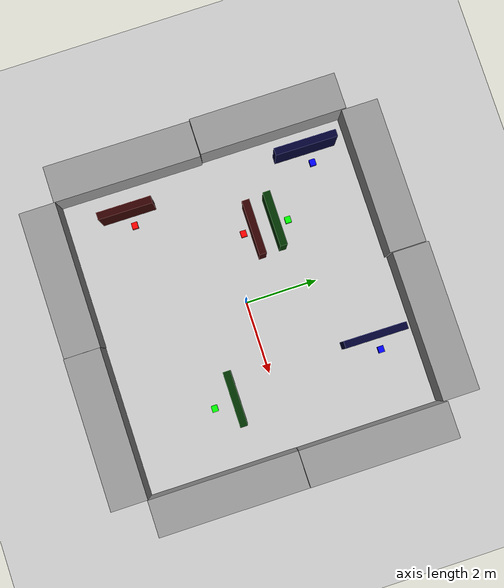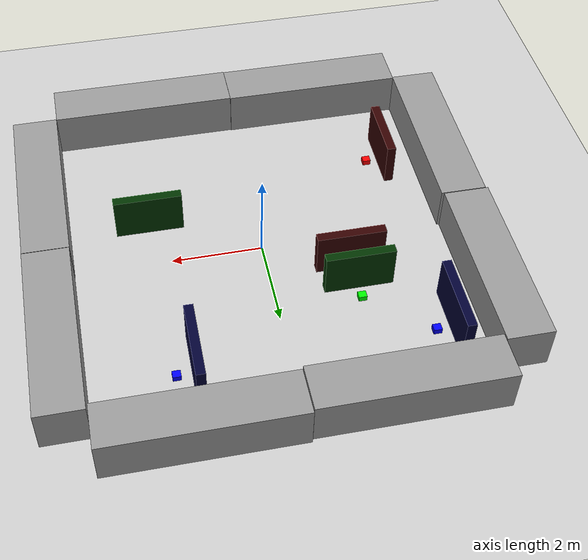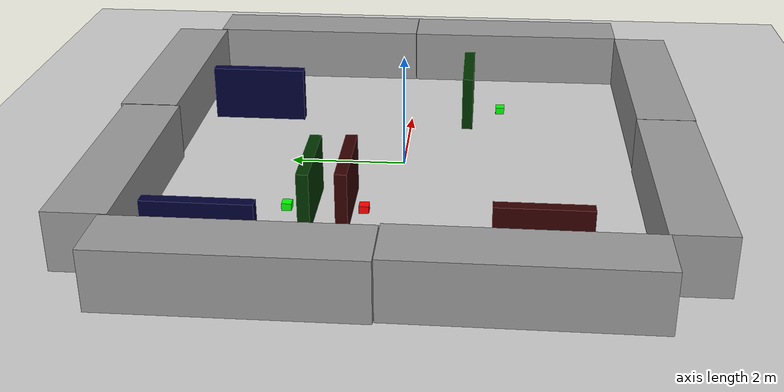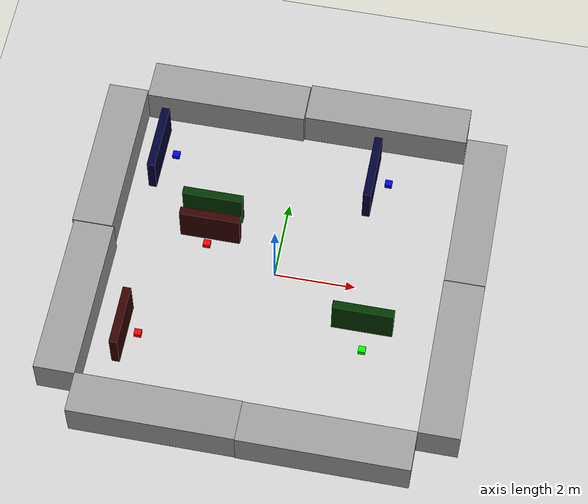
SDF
<sdf version="1.7">
 <world name="default">
  <light name="sun" type="directional">
   <cast_shadows>0</cast_shadows>
   <pose>0 0 10 0 -0 0</pose>
   <diffuse>0.8 0.8 0.8 1</diffuse>
   <specular>0.2 0.2 0.2 1</specular>
   <attenuation>
    <range>1000</range>
    <constant>0.9</constant>
    <linear>0.01</linear>
    <quadratic>0.001</quadratic>
   </attenuation>
   <direction>-0.5 0.1 -0.9</direction>
   <spot><inner_angle>0</inner_angle><outer_angle>0</outer_angle><falloff>0</falloff></spot>
  </light>
  <model name="ground_plane">
   <static>1</static>
   <link name="link">
    <collision name="collision">
     <geometry><plane><normal>0 0 1</normal><size>100 100</size></plane></geometry>
     <surface><friction><ode><mu>100</mu><mu2>50</mu2></ode></friction></surface>
    </collision>
    <visual name="visual">
     <cast_shadows>0</cast_shadows>
     <geometry><plane><normal>0 0 1</normal><size>100 100</size></plane></geometry>
     <material>
      <script><uri>file://media/materials/scripts/gazebo.material</uri><name>Gazebo/Grey</name></script>
     </material>
    </visual>
   </link>
  </model>
  <gravity>0 0 -9.8</gravity>
  <scene><ambient>0.4 0.4 0.4 1</ambient><background>0.7 0.7 0.7 1</background><shadows>1</shadows></scene>
  <magnetic_field>6e-06 2.3e-05 -4.2e-05</magnetic_field>
  <atmosphere type="adiabatic"/>
  <physics type="ode">
   <max_step_size>0.001</max_step_size>
   <real_time_factor>1</real_time_factor>
   <real_time_update_rate>1000</real_time_update_rate>
  </physics>
  <audio><device>default</device></audio>
  <spherical_coordinates>
   <surface_model>EARTH_WGS84</surface_model>
   <latitude_deg>0</latitude_deg>
   <longitude_deg>0</longitude_deg>
   <elevation>0</elevation>
   <heading_deg>0</heading_deg>
  </spherical_coordinates>
  <model name="unit_box_0">
   <pose>2.04658 4.53885 0.499174 -0 -0.000405 3.3e-05</pose>
   <link name="link">
    <inertial>
     <mass>1</mass>
     <inertia>
      <ixx>0.166667</ixx>
      <ixy>0</ixy>
      <ixz>0</ixz>
      <iyy>0.166667</iyy>
      <iyz>0</iyz>
      <izz>0.166667</izz>
     </inertia>
    </inertial>
    <collision name="collision"><geometry><box><size>4.08527 1 1</size></box></geometry></collision>
    <visual name="visual">
     <geometry><box><size>4.08527 1 1</size></box></geometry>
     <material>
      <script><name>Gazebo/Grey</name><uri>file://media/materials/scripts/gazebo.material</uri></script>
     </material>
    </visual>
   </link>
  </model>
  <model name="unit_box_0_clone">
   <pose>-2.02321 4.47648 0.499239 0 -0.000379 -1e-06</pose>
   <link name="link">
    <inertial>
     <mass>1</mass>
     <inertia>
      <ixx>0.166667</ixx>
      <ixy>0</ixy>
      <ixz>0</ixz>
      <iyy>0.166667</iyy>
      <iyz>0</iyz>
      <izz>0.166667</izz>
     </inertia>
    </inertial>
    <collision name="collision"><geometry><box><size>4.01582 1 1</size></box></geometry></collision>
    <visual name="visual">
     <geometry><box><size>4.01582 1 1</size></box></geometry>
     <material>
      <script><name>Gazebo/Grey</name><uri>file://media/materials/scripts/gazebo.material</uri></script>
     </material>
    </visual>
   </link>
  </model>
  <model name="unit_box_0_clone_clone">
   <pose>2.0564 -4.50776 0.499133 0 0.00042 8e-06</pose>
   <link name="link">
    <inertial>
     <mass>1</mass>
     <inertia>
      <ixx>0.166667</ixx>
      <ixy>0</ixy>
      <ixz>0</ixz>
      <iyy>0.166667</iyy>
      <iyz>0</iyz>
      <izz>0.166667</izz>
     </inertia>
    </inertial>
    <collision name="collision"><geometry><box><size>4.12662 1 1</size></box></geometry></collision>
    <visual name="visual">
     <geometry><box><size>4.12662 1 1</size></box></geometry>
     <material>
      <script><name>Gazebo/Grey</name><uri>file://media/materials/scripts/gazebo.material</uri></script>
     </material>
    </visual>
   </link>
  </model>
  <model name="unit_box_clone_0">
   <pose>-4.51419 -1.9969 0.499998 0 -5e-06 -0.005162</pose>
   <link name="link">
    <inertial>
     <mass>1</mass>
     <inertia>
      <ixx>0.166667</ixx>
      <ixy>0</ixy>
      <ixz>0</ixz>
      <iyy>0.166667</iyy>
      <iyz>0</iyz>
      <izz>0.166667</izz>
     </inertia>
    </inertial>
    <collision name="collision"><geometry><box><size>1 4.0622 1</size></box></geometry></collision>
    <visual name="visual">
     <geometry><box><size>1 4.0622 1</size></box></geometry>
     <material>
      <script><name>Gazebo/Grey</name><uri>file://media/materials/scripts/gazebo.material</uri></script>
     </material>
    </visual>
   </link>
  </model>
  <model name="unit_box_clone_1">
   <pose>-4.55273 2.08102 0.499196 0.000396 -0 -4e-05</pose>
   <link name="link">
    <inertial>
     <mass>1</mass>
     <inertia>
      <ixx>0.166667</ixx>
      <ixy>0</ixy>
      <ixz>0</ixz>
      <iyy>0.166667</iyy>
      <iyz>0</iyz>
      <izz>0.166667</izz>
     </inertia>
    </inertial>
    <collision name="collision"><geometry><box><size>1 4.0622 1</size></box></geometry></collision>
    <visual name="visual">
     <geometry><box><size>1 4.0622 1</size></box></geometry>
     <material>
      <script><name>Gazebo/Grey</name><uri>file://media/materials/scripts/gazebo.material</uri></script>
     </material>
    </visual>
   </link>
  </model>
  <model name="unit_box_0_clone_clone_clone">
   <pose>-2.01588 -4.49433 0.499239 0 0.000379 0.000229</pose>
   <link name="link">
    <inertial>
     <mass>1</mass>
     <inertia>
      <ixx>0.166667</ixx>
      <ixy>0</ixy>
      <ixz>0</ixz>
      <iyy>0.166667</iyy>
      <iyz>0</iyz>
      <izz>0.166667</izz>
     </inertia>
    </inertial>
    <collision name="collision"><geometry><box><size>4.01582 1 1</size></box></geometry></collision>
    <visual name="visual">
     <geometry><box><size>4.01582 1 1</size></box></geometry>
     <material>
      <script><name>Gazebo/Grey</name><uri>file://media/materials/scripts/gazebo.material</uri></script>
     </material>
    </visual>
   </link>
  </model>
  <model name="unit_box_1_clone_1_clone_clone_1">
   <link name="link">
    <inertial>
     <mass>1</mass>
     <inertia>
      <ixx>0.166667</ixx>
      <ixy>0</ixy>
      <ixz>0</ixz>
      <iyy>0.166667</iyy>
      <iyz>0</iyz>
      <izz>0.166667</izz>
     </inertia>
    </inertial>
    <visual name="visual">
     <geometry><box><size>0.177426 0.164052 0.124949</size></box></geometry>
     <material>
      <script><name>Gazebo/Grey</name><uri>file://media/materials/scripts/gazebo.material</uri></script>
      <shader type="pixel"><normal_map>__default__</normal_map></shader>
      <ambient>0 0 1 1</ambient>
      <diffuse>0 0 1 1</diffuse>
      <specular>0 0 1 1</specular>
      <emissive>0 0 1 1</emissive>
      <lighting>1</lighting>
     </material>
    </visual>
    <collision name="collision">
     <geometry><box><size>0.177426 0.164052 0.124949</size></box></geometry>
     <surface>
      <friction>
       <ode><mu>1</mu><mu2>1</mu2><fdir1>0 0 0</fdir1><slip1>0</slip1><slip2>0</slip2></ode>
       <torsional>
        <coefficient>1</coefficient>
        <patch_radius>0</patch_radius>
        <surface_radius>0</surface_radius>
        <use_patch_radius>1</use_patch_radius>
        <ode><slip>0</slip></ode>
       </torsional>
      </friction>
      <bounce><restitution_coefficient>0</restitution_coefficient><threshold>1e+06</threshold></bounce>
      <contact>
       <collide_without_contact>0</collide_without_contact>
       <collide_without_contact_bitmask>1</collide_without_contact_bitmask>
       <collide_bitmask>1</collide_bitmask>
       <ode>
        <soft_cfm>0</soft_cfm>
        <soft_erp>0.2</soft_erp>
        <kp>1e+13</kp>
        <kd>1</kd>
        <max_vel>0.01</max_vel>
        <min_depth>0</min_depth>
       </ode>
       <bullet>
        <split_impulse>1</split_impulse>
        <split_impulse_penetration_threshold>-0.01</split_impulse_penetration_threshold>
        <soft_cfm>0</soft_cfm>
        <soft_erp>0.2</soft_erp>
        <kp>1e+13</kp>
        <kd>1</kd>
       </bullet>
      </contact>
     </surface>
    </collision>
   </link>
   <static>0</static>
   <pose>2.33181 3.06929 0.062474 -2e-06 -3e-06 -5e-06</pose>
  </model>
  <model name="unit_box_1_clone_1_clone">
   <link name="link">
    <inertial>
     <mass>1</mass>
     <inertia>
      <ixx>0.166667</ixx>
      <ixy>0</ixy>
      <ixz>0</ixz>
      <iyy>0.166667</iyy>
      <iyz>0</iyz>
      <izz>0.166667</izz>
     </inertia>
    </inertial>
    <visual name="visual">
     <geometry><box><size>0.177426 0.164052 0.124949</size></box></geometry>
     <material>
      <script><name>Gazebo/Grey</name><uri>file://media/materials/scripts/gazebo.material</uri></script>
      <shader type="pixel"><normal_map>__default__</normal_map></shader>
      <ambient>1 0 0 1</ambient>
      <diffuse>1 0 0 1</diffuse>
      <specular>1 0 0 1</specular>
      <emissive>1 0 0 1</emissive>
      <lighting>1</lighting>
     </material>
    </visual>
    <collision name="collision">
     <geometry><box><size>0.177426 0.164052 0.124949</size></box></geometry>
     <surface>
      <friction>
       <ode><mu>1</mu><mu2>1</mu2><fdir1>0 0 0</fdir1><slip1>0</slip1><slip2>0</slip2></ode>
       <torsional>
        <coefficient>1</coefficient>
        <patch_radius>0</patch_radius>
        <surface_radius>0</surface_radius>
        <use_patch_radius>1</use_patch_radius>
        <ode><slip>0</slip></ode>
       </torsional>
      </friction>
      <bounce><restitution_coefficient>0</restitution_coefficient><threshold>1e+06</threshold></bounce>
      <contact>
       <collide_without_contact>0</collide_without_contact>
       <collide_without_contact_bitmask>1</collide_without_contact_bitmask>
       <collide_bitmask>1</collide_bitmask>
       <ode>
        <soft_cfm>0</soft_cfm>
        <soft_erp>0.2</soft_erp>
        <kp>1e+13</kp>
        <kd>1</kd>
        <max_vel>0.01</max_vel>
        <min_depth>0</min_depth>
       </ode>
       <bullet>
        <split_impulse>1</split_impulse>
        <split_impulse_penetration_threshold>-0.01</split_impulse_penetration_threshold>
        <soft_cfm>0</soft_cfm>
        <soft_erp>0.2</soft_erp>
        <kp>1e+13</kp>
        <kd>1</kd>
       </bullet>
      </contact>
     </surface>
    </collision>
   </link>
   <static>0</static>
   <pose>-2.95207 -2.2407 0.062474 5e-06 -1e-06 -1.1e-05</pose>
  </model>
  <model name="unit_box_1_clone_1_clone_clone_3">
   <link name="link">
    <inertial>
     <mass>1</mass>
     <inertia>
      <ixx>0.166667</ixx>
      <ixy>0</ixy>
      <ixz>0</ixz>
      <iyy>0.166667</iyy>
      <iyz>0</iyz>
      <izz>0.166667</izz>
     </inertia>
    </inertial>
    <visual name="visual">
     <geometry><box><size>0.177426 0.164052 0.124949</size></box></geometry>
     <material>
      <script><name>Gazebo/Grey</name><uri>file://media/materials/scripts/gazebo.material</uri></script>
      <shader type="pixel"><normal_map>__default__</normal_map></shader>
      <ambient>1 0 0 1</ambient>
      <diffuse>1 0 0 1</diffuse>
      <specular>1 0 0 1</specular>
      <emissive>1 0 0 1</emissive>
      <lighting>1</lighting>
     </material>
    </visual>
    <collision name="collision">
     <geometry><box><size>0.177426 0.164052 0.124949</size></box></geometry>
     <surface>
      <friction>
       <ode><mu>1</mu><mu2>1</mu2><fdir1>0 0 0</fdir1><slip1>0</slip1><slip2>0</slip2></ode>
       <torsional>
        <coefficient>1</coefficient>
        <patch_radius>0</patch_radius>
        <surface_radius>0</surface_radius>
        <use_patch_radius>1</use_patch_radius>
        <ode><slip>0</slip></ode>
       </torsional>
      </friction>
      <bounce><restitution_coefficient>0</restitution_coefficient><threshold>1e+06</threshold></bounce>
      <contact>
       <collide_without_contact>0</collide_without_contact>
       <collide_without_contact_bitmask>1</collide_without_contact_bitmask>
       <collide_bitmask>1</collide_bitmask>
       <ode>
        <soft_cfm>0</soft_cfm>
        <soft_erp>0.2</soft_erp>
        <kp>1e+13</kp>
        <kd>1</kd>
        <max_vel>0.01</max_vel>
        <min_depth>0</min_depth>
       </ode>
       <bullet>
        <split_impulse>1</split_impulse>
        <split_impulse_penetration_threshold>-0.01</split_impulse_penetration_threshold>
        <soft_cfm>0</soft_cfm>
        <soft_erp>0.2</soft_erp>
        <kp>1e+13</kp>
        <kd>1</kd>
       </bullet>
      </contact>
     </surface>
    </collision>
   </link>
   <static>0</static>
   <pose>-1.81636 0.514949 0.062474 3e-06 -3e-06 2e-06</pose>
  </model>
  <model name="unit_box_1_clone_1_clone_clone_2">
   <link name="link">
    <inertial>
     <mass>1</mass>
     <inertia>
      <ixx>0.166667</ixx>
      <ixy>0</ixy>
      <ixz>0</ixz>
      <iyy>0.166667</iyy>
      <iyz>0</iyz>
      <izz>0.166667</izz>
     </inertia>
    </inertial>
    <visual name="visual">
     <geometry><box><size>0.177426 0.164052 0.124949</size></box></geometry>
     <material>
      <script><name>Gazebo/Grey</name><uri>file://media/materials/scripts/gazebo.material</uri></script>
      <shader type="pixel"><normal_map>__default__</normal_map></shader>
      <ambient>0 0 1 1</ambient>
      <diffuse>0 1 0 1</diffuse>
      <specular>0 1 0 1</specular>
      <emissive>0 1 0 1</emissive>
      <lighting>1</lighting>
     </material>
    </visual>
    <collision name="collision">
     <geometry><box><size>0.177426 0.164052 0.124949</size></box></geometry>
     <surface>
      <friction>
       <ode><mu>1</mu><mu2>1</mu2><fdir1>0 0 0</fdir1><slip1>0</slip1><slip2>0</slip2></ode>
       <torsional>
        <coefficient>1</coefficient>
        <patch_radius>0</patch_radius>
        <surface_radius>0</surface_radius>
        <use_patch_radius>1</use_patch_radius>
        <ode><slip>0</slip></ode>
       </torsional>
      </friction>
      <bounce><restitution_coefficient>0</restitution_coefficient><threshold>1e+06</threshold></bounce>
      <contact>
       <collide_without_contact>0</collide_without_contact>
       <collide_without_contact_bitmask>1</collide_without_contact_bitmask>
       <collide_bitmask>1</collide_bitmask>
       <ode>
        <soft_cfm>0</soft_cfm>
        <soft_erp>0.2</soft_erp>
        <kp>1e+13</kp>
        <kd>1</kd>
        <max_vel>0.01</max_vel>
        <min_depth>0</min_depth>
       </ode>
       <bullet>
        <split_impulse>1</split_impulse>
        <split_impulse_penetration_threshold>-0.01</split_impulse_penetration_threshold>
        <soft_cfm>0</soft_cfm>
        <soft_erp>0.2</soft_erp>
        <kp>1e+13</kp>
        <kd>1</kd>
       </bullet>
      </contact>
     </surface>
    </collision>
   </link>
   <static>0</static>
   <pose>-1.81227 1.7855 0.062475 -1e-06 -3e-06 -1.4e-05</pose>
  </model>
  <model name="unit_box_1_clone">
   <link name="link">
    <inertial>
     <mass>1</mass>
     <inertia>
      <ixx>0.166667</ixx>
      <ixy>0</ixy>
      <ixz>0</ixz>
      <iyy>0.166667</iyy>
      <iyz>0</iyz>
      <izz>0.166667</izz>
     </inertia>
    </inertial>
    <visual name="visual">
     <geometry><box><size>1.72369 0.197957 1</size></box></geometry>
     <material>
      <script><name>Gazebo/Grey</name><uri>file://media/materials/scripts/gazebo.material</uri></script>
      <shader type="pixel"><normal_map>__default__</normal_map></shader>
      <ambient>0 0 0.2 0</ambient>
      <diffuse>0.7 0.7 0.7 1</diffuse>
      <specular>0.01 0.01 0.01 1</specular>
      <emissive>0 0 0 1</emissive>
     </material>
    </visual>
    <collision name="collision">
     <geometry><box><size>1.72369 0.197957 1</size></box></geometry>
     <surface>
      <friction>
       <ode><mu>1</mu><mu2>1</mu2><fdir1>0 0 0</fdir1><slip1>0</slip1><slip2>0</slip2></ode>
       <torsional>
        <coefficient>1</coefficient>
        <patch_radius>0</patch_radius>
        <surface_radius>0</surface_radius>
        <use_patch_radius>1</use_patch_radius>
        <ode><slip>0</slip></ode>
       </torsional>
      </friction>
      <bounce><restitution_coefficient>0</restitution_coefficient><threshold>1e+06</threshold></bounce>
      <contact>
       <collide_without_contact>0</collide_without_contact>
       <collide_without_contact_bitmask>1</collide_without_contact_bitmask>
       <collide_bitmask>1</collide_bitmask>
       <ode>
        <soft_cfm>0</soft_cfm>
        <soft_erp>0.2</soft_erp>
        <kp>1e+13</kp>
        <kd>1</kd>
        <max_vel>0.01</max_vel>
        <min_depth>0</min_depth>
       </ode>
       <bullet>
        <split_impulse>1</split_impulse>
        <split_impulse_penetration_threshold>-0.01</split_impulse_penetration_threshold>
        <soft_cfm>0</soft_cfm>
        <soft_erp>0.2</soft_erp>
        <kp>1e+13</kp>
        <kd>1</kd>
       </bullet>
      </contact>
     </surface>
    </collision>
   </link>
   <static>0</static>
   <pose>1.91535 2.93414 0.499995 0 6e-06 -1.57817</pose>
  </model>
  <model name="unit_box_1_clone_0">
   <link name="link">
    <inertial>
     <mass>1</mass>
     <inertia>
      <ixx>0.166667</ixx>
      <ixy>0</ixy>
      <ixz>0</ixz>
      <iyy>0.166667</iyy>
      <iyz>0</iyz>
      <izz>0.166667</izz>
     </inertia>
    </inertial>
    <visual name="visual">
     <geometry><box><size>1.50144 0.197957 1</size></box></geometry>
     <material>
      <script><name>Gazebo/Grey</name><uri>file://media/materials/scripts/gazebo.material</uri></script>
      <shader type="pixel"><normal_map>__default__</normal_map></shader>
      <ambient>0 0.2 0 0</ambient>
      <diffuse>0.7 0.7 0.7 1</diffuse>
      <specular>0.01 0.01 0.01 1</specular>
      <emissive>0 0 0 1</emissive>
     </material>
    </visual>
    <collision name="collision">
     <geometry><box><size>1.50144 0.197957 1</size></box></geometry>
     <surface>
      <friction>
       <ode><mu>1</mu><mu2>1</mu2><fdir1>0 0 0</fdir1><slip1>0</slip1><slip2>0</slip2></ode>
       <torsional>
        <coefficient>1</coefficient>
        <patch_radius>0</patch_radius>
        <surface_radius>0</surface_radius>
        <use_patch_radius>1</use_patch_radius>
        <ode><slip>0</slip></ode>
       </torsional>
      </friction>
      <bounce><restitution_coefficient>0</restitution_coefficient><threshold>1e+06</threshold></bounce>
      <contact>
       <collide_without_contact>0</collide_without_contact>
       <collide_without_contact_bitmask>1</collide_without_contact_bitmask>
       <collide_bitmask>1</collide_bitmask>
       <ode>
        <soft_cfm>0</soft_cfm>
        <soft_erp>0.2</soft_erp>
        <kp>1e+13</kp>
        <kd>1</kd>
        <max_vel>0.01</max_vel>
        <min_depth>0</min_depth>
       </ode>
       <bullet>
        <split_impulse>1</split_impulse>
        <split_impulse_penetration_threshold>-0.01</split_impulse_penetration_threshold>
        <soft_cfm>0</soft_cfm>
        <soft_erp>0.2</soft_erp>
        <kp>1e+13</kp>
        <kd>1</kd>
       </bullet>
      </contact>
     </surface>
    </collision>
   </link>
   <static>0</static>
   <pose>-1.82249 1.3914 0.5 1e-06 -0 0</pose>
  </model>
  <model name="unit_box_1_clone_0_clone">
   <link name="link">
    <inertial>
     <mass>1</mass>
     <inertia>
      <ixx>0.166667</ixx>
      <ixy>0</ixy>
      <ixz>0</ixz>
      <iyy>0.166667</iyy>
      <iyz>0</iyz>
      <izz>0.166667</izz>
     </inertia>
    </inertial>
    <visual name="visual">
     <geometry><box><size>1.50144 0.197957 1</size></box></geometry>
     <material>
      <script><name>Gazebo/Grey</name><uri>file://media/materials/scripts/gazebo.material</uri></script>
      <shader type="pixel"><normal_map>__default__</normal_map></shader>
      <ambient>0.2 0 0 0</ambient>
      <diffuse>0.7 0.7 0.7 1</diffuse>
      <specular>0.01 0.01 0.01 1</specular>
      <emissive>0 0 0 1</emissive>
     </material>
    </visual>
    <collision name="collision">
     <geometry><box><size>1.50144 0.197957 1</size></box></geometry>
     <surface>
      <friction>
       <ode><mu>1</mu><mu2>1</mu2><fdir1>0 0 0</fdir1><slip1>0</slip1><slip2>0</slip2></ode>
       <torsional>
        <coefficient>1</coefficient>
        <patch_radius>0</patch_radius>
        <surface_radius>0</surface_radius>
        <use_patch_radius>1</use_patch_radius>
        <ode><slip>0</slip></ode>
       </torsional>
      </friction>
      <bounce><restitution_coefficient>0</restitution_coefficient><threshold>1e+06</threshold></bounce>
      <contact>
       <collide_without_contact>0</collide_without_contact>
       <collide_without_contact_bitmask>1</collide_without_contact_bitmask>
       <collide_bitmask>1</collide_bitmask>
       <ode>
        <soft_cfm>0</soft_cfm>
        <soft_erp>0.2</soft_erp>
        <kp>1e+13</kp>
        <kd>1</kd>
        <max_vel>0.01</max_vel>
        <min_depth>0</min_depth>
       </ode>
       <bullet>
        <split_impulse>1</split_impulse>
        <split_impulse_penetration_threshold>-0.01</split_impulse_penetration_threshold>
        <soft_cfm>0</soft_cfm>
        <soft_erp>0.2</soft_erp>
        <kp>1e+13</kp>
        <kd>1</kd>
       </bullet>
      </contact>
     </surface>
    </collision>
   </link>
   <static>0</static>
   <pose>-1.7749 0.798285 0.5 1e-06 -0 0</pose>
  </model>
  <model name="unit_box_1_clone_1">
   <link name="link">
    <inertial>
     <mass>1</mass>
     <inertia>
      <ixx>0.166667</ixx>
      <ixy>0</ixy>
      <ixz>0</ixz>
      <iyy>0.166667</iyy>
      <iyz>0</iyz>
      <izz>0.166667</izz>
     </inertia>
    </inertial>
    <visual name="visual">
     <geometry><box><size>1.50144 0.197957 1</size></box></geometry>
     <material>
      <script><name>Gazebo/Grey</name><uri>file://media/materials/scripts/gazebo.material</uri></script>
      <shader type="pixel"><normal_map>__default__</normal_map></shader>
      <ambient>0.2 0 0 0</ambient>
      <diffuse>0.7 0.7 0.7 1</diffuse>
      <specular>0.01 0.01 0.01 1</specular>
      <emissive>0 0 0 1</emissive>
     </material>
    </visual>
    <collision name="collision">
     <geometry><box><size>1.50144 0.197957 1</size></box></geometry>
     <surface>
      <friction>
       <ode><mu>1</mu><mu2>1</mu2><fdir1>0 0 0</fdir1><slip1>0</slip1><slip2>0</slip2></ode>
       <torsional>
        <coefficient>1</coefficient>
        <patch_radius>0</patch_radius>
        <surface_radius>0</surface_radius>
        <use_patch_radius>1</use_patch_radius>
        <ode><slip>0</slip></ode>
       </torsional>
      </friction>
      <bounce><restitution_coefficient>0</restitution_coefficient><threshold>1e+06</threshold></bounce>
      <contact>
       <collide_without_contact>0</collide_without_contact>
       <collide_without_contact_bitmask>1</collide_without_contact_bitmask>
       <collide_bitmask>1</collide_bitmask>
       <ode>
        <soft_cfm>0</soft_cfm>
        <soft_erp>0.2</soft_erp>
        <kp>1e+13</kp>
        <kd>1</kd>
        <max_vel>0.01</max_vel>
        <min_depth>0</min_depth>
       </ode>
       <bullet>
        <split_impulse>1</split_impulse>
        <split_impulse_penetration_threshold>-0.01</split_impulse_penetration_threshold>
        <soft_cfm>0</soft_cfm>
        <soft_erp>0.2</soft_erp>
        <kp>1e+13</kp>
        <kd>1</kd>
       </bullet>
      </contact>
     </surface>
    </collision>
   </link>
   <static>0</static>
   <pose>-3.32057 -2.30225 0.5 -1e-06 -0 -1.57503</pose>
  </model>
  <model name="unit_box_0_clone_0">
   <pose>4.6221 2.11478 0.499174 0 -0.000405 -1.56845</pose>
   <link name="link">
    <inertial>
     <mass>1</mass>
     <inertia>
      <ixx>0.166667</ixx>
      <ixy>0</ixy>
      <ixz>0</ixz>
      <iyy>0.166667</iyy>
      <iyz>0</iyz>
      <izz>0.166667</izz>
     </inertia>
    </inertial>
    <collision name="collision"><geometry><box><size>4.08527 1 1</size></box></geometry></collision>
    <visual name="visual">
     <geometry><box><size>4.08527 1 1</size></box></geometry>
     <material>
      <script><name>Gazebo/Grey</name><uri>file://media/materials/scripts/gazebo.material</uri></script>
     </material>
    </visual>
   </link>
  </model>
  <model name="unit_box_0_clone_0_clone">
   <pose>4.62291 -1.98118 0.499174 0 -0.000405 -1.57025</pose>
   <link name="link">
    <inertial>
     <mass>1</mass>
     <inertia>
      <ixx>0.166667</ixx>
      <ixy>0</ixy>
      <ixz>0</ixz>
      <iyy>0.166667</iyy>
      <iyz>0</iyz>
      <izz>0.166667</izz>
     </inertia>
    </inertial>
    <collision name="collision"><geometry><box><size>4.08527 1 1</size></box></geometry></collision>
    <visual name="visual">
     <geometry><box><size>4.08527 1 1</size></box></geometry>
     <material>
      <script><name>Gazebo/Grey</name><uri>file://media/materials/scripts/gazebo.material</uri></script>
     </material>
    </visual>
   </link>
  </model>
  <model name="unit_box_1_clone_clone">
   <link name="link">
    <inertial>
     <mass>1</mass>
     <inertia>
      <ixx>0.166667</ixx>
      <ixy>0</ixy>
      <ixz>0</ixz>
      <iyy>0.166667</iyy>
      <iyz>0</iyz>
      <izz>0.166667</izz>
     </inertia>
    </inertial>
    <visual name="visual">
     <geometry><box><size>1.72369 0.197957 1</size></box></geometry>
     <material>
      <script><name>Gazebo/Grey</name><uri>file://media/materials/scripts/gazebo.material</uri></script>
      <shader type="pixel"><normal_map>__default__</normal_map></shader>
      <ambient>0 0 0.2 0</ambient>
      <diffuse>0.7 0.7 0.7 1</diffuse>
      <specular>0.01 0.01 0.01 1</specular>
      <emissive>0 0 0 1</emissive>
     </material>
    </visual>
    <collision name="collision">
     <geometry><box><size>1.72369 0.197957 1</size></box></geometry>
     <surface>
      <friction>
       <ode><mu>1</mu><mu2>1</mu2><fdir1>0 0 0</fdir1><slip1>0</slip1><slip2>0</slip2></ode>
       <torsional>
        <coefficient>1</coefficient>
        <patch_radius>0</patch_radius>
        <surface_radius>0</surface_radius>
        <use_patch_radius>1</use_patch_radius>
        <ode><slip>0</slip></ode>
       </torsional>
      </friction>
      <bounce><restitution_coefficient>0</restitution_coefficient><threshold>1e+06</threshold></bounce>
      <contact>
       <collide_without_contact>0</collide_without_contact>
       <collide_without_contact_bitmask>1</collide_without_contact_bitmask>
       <collide_bitmask>1</collide_bitmask>
       <ode>
        <soft_cfm>0</soft_cfm>
        <soft_erp>0.2</soft_erp>
        <kp>1e+13</kp>
        <kd>1</kd>
        <max_vel>0.01</max_vel>
        <min_depth>0</min_depth>
       </ode>
       <bullet>
        <split_impulse>1</split_impulse>
        <split_impulse_penetration_threshold>-0.01</split_impulse_penetration_threshold>
        <soft_cfm>0</soft_cfm>
        <soft_erp>0.2</soft_erp>
        <kp>1e+13</kp>
        <kd>1</kd>
       </bullet>
      </contact>
     </surface>
    </collision>
   </link>
   <static>0</static>
   <pose>-3.50394 2.79976 0.499995 0 6e-06 -1.57795</pose>
  </model>
  <model name="unit_box_1_clone_1_clone_clone_1_clone">
   <link name="link">
    <inertial>
     <mass>1</mass>
     <inertia>
      <ixx>0.166667</ixx>
      <ixy>0</ixy>
      <ixz>0</ixz>
      <iyy>0.166667</iyy>
      <iyz>0</iyz>
      <izz>0.166667</izz>
     </inertia>
    </inertial>
    <visual name="visual">
     <geometry><box><size>0.177426 0.164052 0.124949</size></box></geometry>
     <material>
      <script><name>Gazebo/Grey</name><uri>file://media/materials/scripts/gazebo.material</uri></script>
      <shader type="pixel"><normal_map>__default__</normal_map></shader>
      <ambient>0 0 1 1</ambient>
      <diffuse>0 0 1 1</diffuse>
      <specular>0 0 1 1</specular>
      <emissive>0 0 1 1</emissive>
      <lighting>1</lighting>
     </material>
    </visual>
    <collision name="collision">
     <geometry><box><size>0.177426 0.164052 0.124949</size></box></geometry>
     <surface>
      <friction>
       <ode><mu>1</mu><mu2>1</mu2><fdir1>0 0 0</fdir1><slip1>0</slip1><slip2>0</slip2></ode>
       <torsional>
        <coefficient>1</coefficient>
        <patch_radius>0</patch_radius>
        <surface_radius>0</surface_radius>
        <use_patch_radius>1</use_patch_radius>
        <ode><slip>0</slip></ode>
       </torsional>
      </friction>
      <bounce><restitution_coefficient>0</restitution_coefficient><threshold>1e+06</threshold></bounce>
      <contact>
       <collide_without_contact>0</collide_without_contact>
       <collide_without_contact_bitmask>1</collide_without_contact_bitmask>
       <collide_bitmask>1</collide_bitmask>
       <ode>
        <soft_cfm>0</soft_cfm>
        <soft_erp>0.2</soft_erp>
        <kp>1e+13</kp>
        <kd>1</kd>
        <max_vel>0.01</max_vel>
        <min_depth>0</min_depth>
       </ode>
       <bullet>
        <split_impulse>1</split_impulse>
        <split_impulse_penetration_threshold>-0.01</split_impulse_penetration_threshold>
        <soft_cfm>0</soft_cfm>
        <soft_erp>0.2</soft_erp>
        <kp>1e+13</kp>
        <kd>1</kd>
       </bullet>
      </contact>
     </surface>
    </collision>
   </link>
   <static>0</static>
   <pose>-3.10843 2.92629 0.062474 -5e-06 1e-06 -3e-06</pose>
  </model>
  <model name="GreenBox">
   <link name="link">
    <inertial>
     <mass>1</mass>
     <inertia>
      <ixx>0.166667</ixx>
      <ixy>0</ixy>
      <ixz>0</ixz>
      <iyy>0.166667</iyy>
      <iyz>0</iyz>
      <izz>0.166667</izz>
     </inertia>
    </inertial>
    <visual name="visual">
     <geometry><box><size>0.177426 0.164052 0.124949</size></box></geometry>
     <material>
      <script><name>Gazebo/Grey</name><uri>file://media/materials/scripts/gazebo.material</uri></script>
      <shader type="pixel"><normal_map>__default__</normal_map></shader>
      <ambient>0 1 0 0</ambient>
      <diffuse>0 1 0 0</diffuse>
      <specular>0 1 0 0</specular>
      <emissive>0 1 0 0</emissive>
      <lighting>1</lighting>
     </material>
    </visual>
    <collision name="collision">
     <geometry><box><size>0.177426 0.164052 0.124949</size></box></geometry>
     <surface>
      <friction>
       <ode><mu>1</mu><mu2>1</mu2><fdir1>0 0 0</fdir1><slip1>0</slip1><slip2>0</slip2></ode>
       <torsional>
        <coefficient>1</coefficient>
        <patch_radius>0</patch_radius>
        <surface_radius>0</surface_radius>
        <use_patch_radius>1</use_patch_radius>
        <ode><slip>0</slip></ode>
       </torsional>
      </friction>
      <bounce><restitution_coefficient>0</restitution_coefficient><threshold>1e+06</threshold></bounce>
      <contact>
       <collide_without_contact>0</collide_without_contact>
       <collide_without_contact_bitmask>1</collide_without_contact_bitmask>
       <collide_bitmask>1</collide_bitmask>
       <ode>
        <soft_cfm>0</soft_cfm>
        <soft_erp>0.2</soft_erp>
        <kp>1e+13</kp>
        <kd>1</kd>
        <max_vel>0.01</max_vel>
        <min_depth>0</min_depth>
       </ode>
       <bullet>
        <split_impulse>1</split_impulse>
        <split_impulse_penetration_threshold>-0.01</split_impulse_penetration_threshold>
        <soft_cfm>0</soft_cfm>
        <soft_erp>0.2</soft_erp>
        <kp>1e+13</kp>
        <kd>1</kd>
       </bullet>
      </contact>
     </surface>
    </collision>
   </link>
   <static>0</static>
   <pose>2.45278 -1.69289 0.062474 -2e-06 4e-06 -1e-05</pose>
  </model>
  <model name="GreenWall">
   <link name="link">
    <inertial>
     <mass>1</mass>
     <inertia>
      <ixx>0.166667</ixx>
      <ixy>0</ixy>
      <ixz>0</ixz>
      <iyy>0.166667</iyy>
      <iyz>0</iyz>
      <izz>0.166667</izz>
     </inertia>
    </inertial>
    <visual name="visual">
     <geometry><box><size>1.50144 0.197957 1</size></box></geometry>
     <material>
      <script><name>Gazebo/Grey</name><uri>file://media/materials/scripts/gazebo.material</uri></script>
      <shader type="pixel"><normal_map>__default__</normal_map></shader>
      <ambient>0 0.2 0 0</ambient>
      <diffuse>0.7 0.7 0.7 1</diffuse>
      <specular>0.01 0.01 0.01 1</specular>
      <emissive>0 0 0 1</emissive>
     </material>
    </visual>
    <collision name="collision">
     <geometry><box><size>1.50144 0.197957 1</size></box></geometry>
     <surface>
      <friction>
       <ode><mu>1</mu><mu2>1</mu2><fdir1>0 0 0</fdir1><slip1>0</slip1><slip2>0</slip2></ode>
       <torsional>
        <coefficient>1</coefficient>
        <patch_radius>0</patch_radius>
        <surface_radius>0</surface_radius>
        <use_patch_radius>1</use_patch_radius>
        <ode><slip>0</slip></ode>
       </torsional>
      </friction>
      <bounce><restitution_coefficient>0</restitution_coefficient><threshold>1e+06</threshold></bounce>
      <contact>
       <collide_without_contact>0</collide_without_contact>
       <collide_without_contact_bitmask>1</collide_without_contact_bitmask>
       <collide_bitmask>1</collide_bitmask>
       <ode>
        <soft_cfm>0</soft_cfm>
        <soft_erp>0.2</soft_erp>
        <kp>1e+13</kp>
        <kd>1</kd>
        <max_vel>0.01</max_vel>
        <min_depth>0</min_depth>
       </ode>
       <bullet>
        <split_impulse>1</split_impulse>
        <split_impulse_penetration_threshold>-0.01</split_impulse_penetration_threshold>
        <soft_cfm>0</soft_cfm>
        <soft_erp>0.2</soft_erp>
        <kp>1e+13</kp>
        <kd>1</kd>
       </bullet>
      </contact>
     </surface>
    </collision>
   </link>
   <static>0</static>
   <pose>2.35401 -1.07099 0.5 1e-06 -0 0</pose>
  </model>
 </world>
</sdf>
